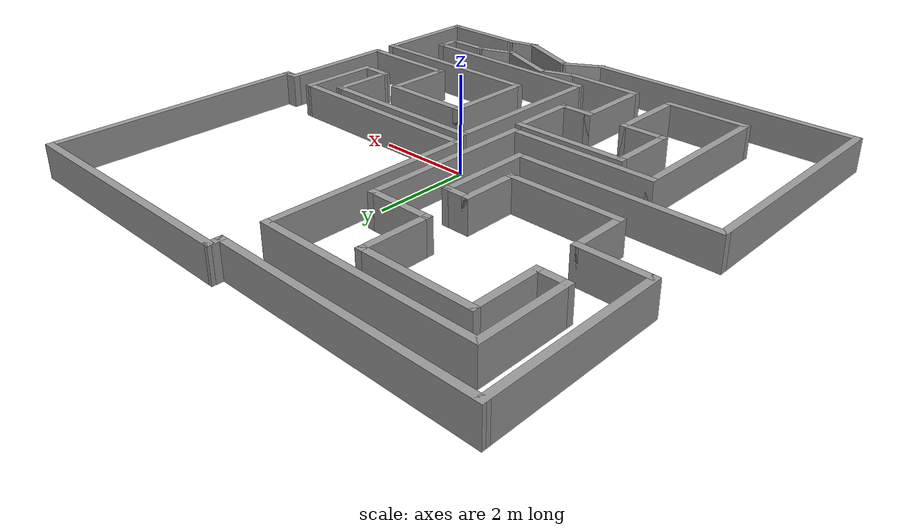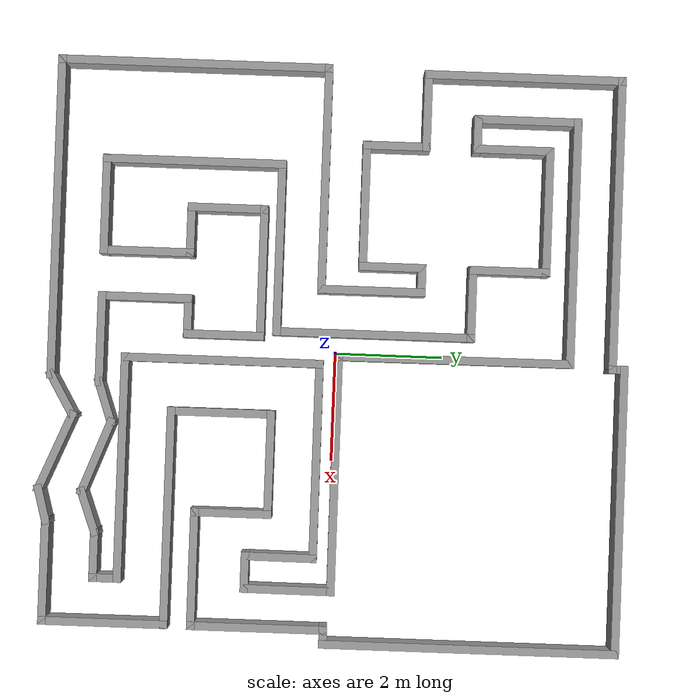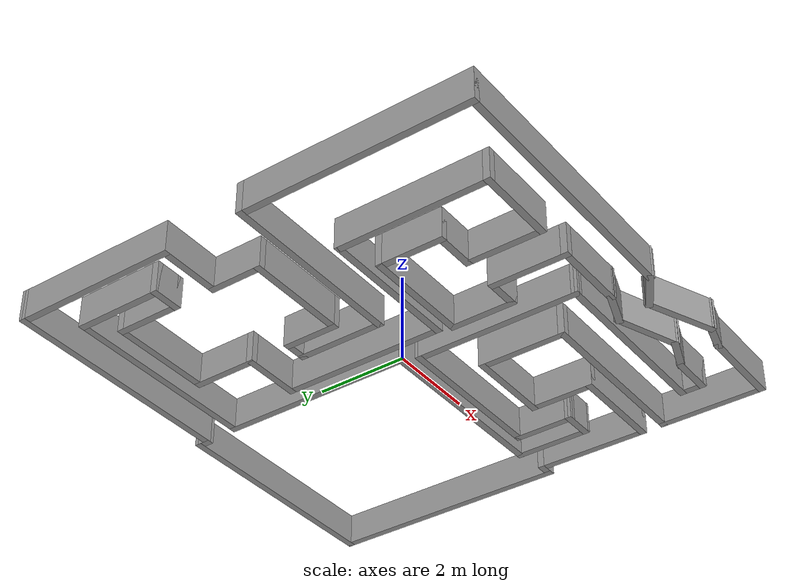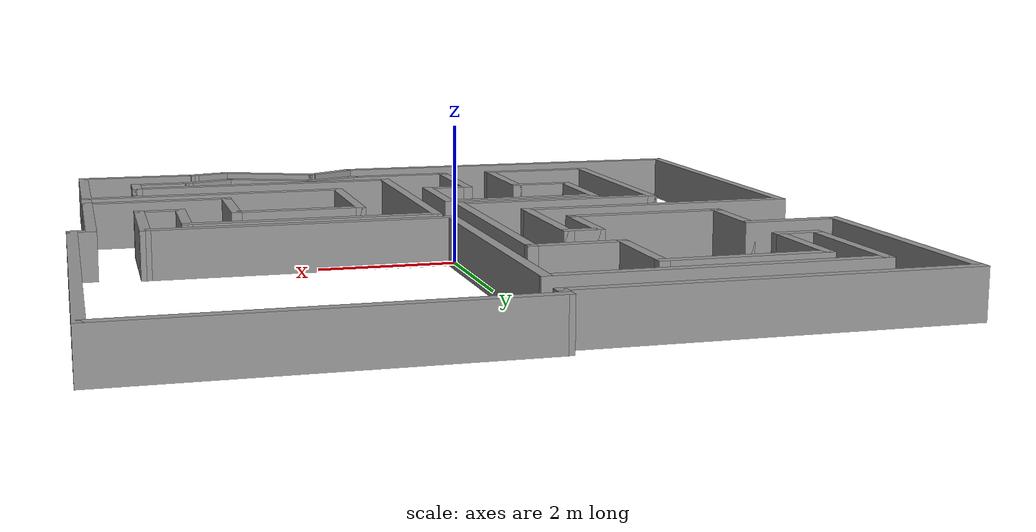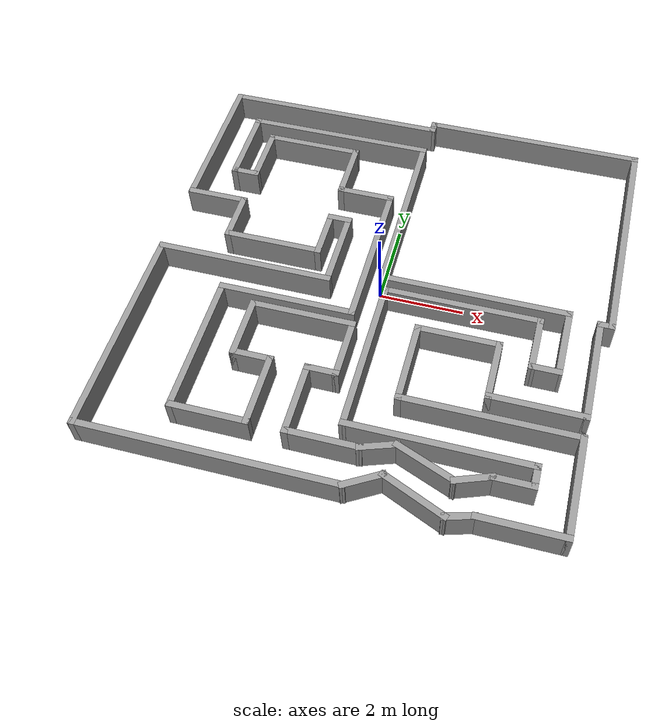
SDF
<?xml version='1.0'?>
<sdf version='1.7'>
  <model name='simulation_map'>
    <pose>0.044507 -0.033482 0 0 -0 0</pose>
    <link name='Wall_0'>
      <collision name='Wall_0_Collision'>
        <geometry>
          <box>
            <size>0.365427 0.15 0.7</size>
          </box>
        </geometry>
        <pose>0 0 0.35 0 -0 0</pose>
      </collision>
      <visual name='Wall_0_Visual'>
        <pose>0 0 0.35 0 -0 0</pose>
        <geometry>
          <box>
            <size>0.365427 0.15 0.7</size>
          </box>
        </geometry>
        <material>
          <script>
            <uri>file://media/materials/scripts/gazebo.material</uri>
            <name>Gazebo/Grey</name>
          </script>
          <ambient>1 1 1 1</ambient>
        </material>
        <meta>
          <layer>0</layer>
        </meta>
      </visual>
      <pose>0.070286 5.28177 0 0 -0 -1.57272</pose>
    </link>
    <link name='Wall_10'>
      <collision name='Wall_10_Collision'>
        <geometry>
          <box>
            <size>3.73867 0.15 0.7</size>
          </box>
        </geometry>
        <pose>0 0 0.35 0 -0 0</pose>
      </collision>
      <visual name='Wall_10_Visual'>
        <pose>0 0 0.35 0 -0 0</pose>
        <geometry>
          <box>
            <size>3.73867 0.15 0.7</size>
          </box>
        </geometry>
        <material>
          <script>
            <uri>file://media/materials/scripts/gazebo.material</uri>
            <name>Gazebo/Grey</name>
          </script>
          <ambient>1 1 1 1</ambient>
        </material>
        <meta>
          <layer>0</layer>
        </meta>
      </visual>
      <pose>-5.27951 3.38198 0 0 -0 -1.5708</pose>
    </link>
    <link name='Wall_13'>
      <collision name='Wall_13_Collision'>
        <geometry>
          <box>
            <size>1.5 0.15 0.7</size>
          </box>
        </geometry>
        <pose>0 0 0.35 0 -0 0</pose>
      </collision>
      <visual name='Wall_13_Visual'>
        <pose>0 0 0.35 0 -0 0</pose>
        <geometry>
          <box>
            <size>1.5 0.15 0.7</size>
          </box>
        </geometry>
        <material>
          <script>
            <uri>file://media/materials/scripts/gazebo.material</uri>
            <name>Gazebo/Grey</name>
          </script>
          <ambient>1 1 1 1</ambient>
        </material>
        <meta>
          <layer>0</layer>
        </meta>
      </visual>
      <pose>-4.60451 1.58748 0 0 -0 0</pose>
    </link>
    <link name='Wall_14'>
      <collision name='Wall_14_Collision'>
        <geometry>
          <box>
            <size>1.25 0.15 0.7</size>
          </box>
        </geometry>
        <pose>0 0 0.35 0 -0 0</pose>
      </collision>
      <visual name='Wall_14_Visual'>
        <pose>0 0 0.35 0 -0 0</pose>
        <geometry>
          <box>
            <size>1.25 0.15 0.7</size>
          </box>
        </geometry>
        <material>
          <script>
            <uri>file://media/materials/scripts/gazebo.material</uri>
            <name>Gazebo/Grey</name>
          </script>
          <ambient>1 1 1 1</ambient>
        </material>
        <meta>
          <layer>0</layer>
        </meta>
      </visual>
      <pose>-3.92951 1.03748 0 0 -0 -1.5708</pose>
    </link>
    <link name='Wall_15'>
      <collision name='Wall_15_Collision'>
        <geometry>
          <box>
            <size>2.4 0.15 0.7</size>
          </box>
        </geometry>
        <pose>0 0 0.35 0 -0 0</pose>
      </collision>
      <visual name='Wall_15_Visual'>
        <pose>0 0 0.35 0 -0 0</pose>
        <geometry>
          <box>
            <size>2.4 0.15 0.7</size>
          </box>
        </geometry>
        <material>
          <script>
            <uri>file://media/materials/scripts/gazebo.material</uri>
            <name>Gazebo/Grey</name>
          </script>
          <ambient>1 1 1 1</ambient>
        </material>
        <meta>
          <layer>0</layer>
        </meta>
      </visual>
      <pose>-2.80451 0.487482 0 0 -0 0</pose>
    </link>
    <link name='Wall_17'>
      <collision name='Wall_17_Collision'>
        <geometry>
          <box>
            <size>1.25 0.15 0.7</size>
          </box>
        </geometry>
        <pose>0 0 0.35 0 -0 0</pose>
      </collision>
      <visual name='Wall_17_Visual'>
        <pose>0 0 0.35 0 -0 0</pose>
        <geometry>
          <box>
            <size>1.25 0.15 0.7</size>
          </box>
        </geometry>
        <material>
          <script>
            <uri>file://media/materials/scripts/gazebo.material</uri>
            <name>Gazebo/Grey</name>
          </script>
          <ambient>1 1 1 1</ambient>
        </material>
        <meta>
          <layer>0</layer>
        </meta>
      </visual>
      <pose>-1.67951 1.03748 0 0 -0 1.5708</pose>
    </link>
    <link name='Wall_18'>
      <collision name='Wall_18_Collision'>
        <geometry>
          <box>
            <size>0.6 0.15 0.7</size>
          </box>
        </geometry>
        <pose>0 0 0.35 0 -0 0</pose>
      </collision>
      <visual name='Wall_18_Visual'>
        <pose>0 0 0.35 0 -0 0</pose>
        <geometry>
          <box>
            <size>0.6 0.15 0.7</size>
          </box>
        </geometry>
        <material>
          <script>
            <uri>file://media/materials/scripts/gazebo.material</uri>
            <name>Gazebo/Grey</name>
          </script>
          <ambient>1 1 1 1</ambient>
        </material>
        <meta>
          <layer>0</layer>
        </meta>
      </visual>
      <pose>-1.45451 1.58748 0 0 -0 0</pose>
    </link>
    <link name='Wall_20'>
      <collision name='Wall_20_Collision'>
        <geometry>
          <box>
            <size>2 0.15 0.7</size>
          </box>
        </geometry>
        <pose>0 0 0.35 0 -0 0</pose>
      </collision>
      <visual name='Wall_20_Visual'>
        <pose>0 0 0.35 0 -0 0</pose>
        <geometry>
          <box>
            <size>2 0.15 0.7</size>
          </box>
        </geometry>
        <material>
          <script>
            <uri>file://media/materials/scripts/gazebo.material</uri>
            <name>Gazebo/Grey</name>
          </script>
          <ambient>1 1 1 1</ambient>
        </material>
        <meta>
          <layer>0</layer>
        </meta>
      </visual>
      <pose>-1.22951 0.662482 0 0 -0 -1.5708</pose>
    </link>
    <link name='Wall_21'>
      <collision name='Wall_21_Collision'>
        <geometry>
          <box>
            <size>4.25 0.15 0.7</size>
          </box>
        </geometry>
        <pose>0 0 0.35 0 -0 0</pose>
      </collision>
      <visual name='Wall_21_Visual'>
        <pose>0 0 0.35 0 -0 0</pose>
        <geometry>
          <box>
            <size>4.25 0.15 0.7</size>
          </box>
        </geometry>
        <material>
          <script>
            <uri>file://media/materials/scripts/gazebo.material</uri>
            <name>Gazebo/Grey</name>
          </script>
          <ambient>1 1 1 1</ambient>
        </material>
        <meta>
          <layer>0</layer>
        </meta>
      </visual>
      <pose>-3.27951 -0.262518 0 0 -0 3.14159</pose>
    </link>
    <link name='Wall_22'>
      <collision name='Wall_22_Collision'>
        <geometry>
          <box>
            <size>5.1 0.15 0.7</size>
          </box>
        </geometry>
        <pose>0 0 0.35 0 -0 0</pose>
      </collision>
      <visual name='Wall_22_Visual'>
        <pose>0 0 0.35 0 -0 0</pose>
        <geometry>
          <box>
            <size>5.1 0.15 0.7</size>
          </box>
        </geometry>
        <material>
          <script>
            <uri>file://media/materials/scripts/gazebo.material</uri>
            <name>Gazebo/Grey</name>
          </script>
          <ambient>1 1 1 1</ambient>
        </material>
        <meta>
          <layer>0</layer>
        </meta>
      </visual>
      <pose>-5.32951 -2.73752 0 0 -0 -1.5708</pose>
    </link>
    <link name='Wall_25'>
      <collision name='Wall_25_Collision'>
        <geometry>
          <box>
            <size>6 0.15 0.7</size>
          </box>
        </geometry>
        <pose>0 0 0.35 0 -0 0</pose>
      </collision>
      <visual name='Wall_25_Visual'>
        <pose>0 0 0.35 0 -0 0</pose>
        <geometry>
          <box>
            <size>6 0.15 0.7</size>
          </box>
        </geometry>
        <material>
          <script>
            <uri>file://media/materials/scripts/gazebo.material</uri>
            <name>Gazebo/Grey</name>
          </script>
          <ambient>1 1 1 1</ambient>
        </material>
        <meta>
          <layer>0</layer>
        </meta>
      </visual>
      <pose>-2.40451 -5.21252 0 0 -0 0</pose>
    </link>
    <link name='Wall_26'>
      <collision name='Wall_26_Collision'>
        <geometry>
          <box>
            <size>1 0.15 0.7</size>
          </box>
        </geometry>
        <pose>0 0 0.35 0 -0 0</pose>
      </collision>
      <visual name='Wall_26_Visual'>
        <pose>0 0 0.35 0 -0 0</pose>
        <geometry>
          <box>
            <size>1 0.15 0.7</size>
          </box>
        </geometry>
        <material>
          <script>
            <uri>file://media/materials/scripts/gazebo.material</uri>
            <name>Gazebo/Grey</name>
          </script>
          <ambient>1 1 1 1</ambient>
        </material>
        <meta>
          <layer>0</layer>
        </meta>
      </visual>
      <pose>0.888493 -5.00002 0 0 -0 0.52367</pose>
    </link>
    <link name='Wall_27'>
      <collision name='Wall_27_Collision'>
        <geometry>
          <box>
            <size>1.65208 0.15 0.7</size>
          </box>
        </geometry>
        <pose>0 0 0.35 0 -0 0</pose>
      </collision>
      <visual name='Wall_27_Visual'>
        <pose>0 0 0.35 0 -0 0</pose>
        <geometry>
          <box>
            <size>1.65208 0.15 0.7</size>
          </box>
        </geometry>
        <material>
          <script>
            <uri>file://media/materials/scripts/gazebo.material</uri>
            <name>Gazebo/Grey</name>
          </script>
          <ambient>1 1 1 1</ambient>
        </material>
        <meta>
          <layer>0</layer>
        </meta>
      </visual>
      <pose>1.94949 -5.07702 0 0 -0 -0.395713</pose>
    </link>
    <link name='Wall_3'>
      <collision name='Wall_3_Collision'>
        <geometry>
          <box>
            <size>5.409 0.15 0.7</size>
          </box>
        </geometry>
        <pose>0 0 0.35 0 -0 0</pose>
      </collision>
      <visual name='Wall_3_Visual'>
        <pose>0 0 0.35 0 -0 0</pose>
        <geometry>
          <box>
            <size>5.409 0.15 0.7</size>
          </box>
        </geometry>
        <material>
          <script>
            <uri>file://media/materials/scripts/gazebo.material</uri>
            <name>Gazebo/Grey</name>
          </script>
          <ambient>1 1 1 1</ambient>
        </material>
        <meta>
          <layer>0</layer>
        </meta>
      </visual>
      <pose>2.69999 5.38948 0 0 -0 0</pose>
    </link>
    <link name='Wall_30'>
      <collision name='Wall_30_Collision'>
        <geometry>
          <box>
            <size>0.75 0.15 0.7</size>
          </box>
        </geometry>
        <pose>0 0 0.35 0 -0 0</pose>
      </collision>
      <visual name='Wall_30_Visual'>
        <pose>0 0 0.35 0 -0 0</pose>
        <geometry>
          <box>
            <size>0.75 0.15 0.7</size>
          </box>
        </geometry>
        <material>
          <script>
            <uri>file://media/materials/scripts/gazebo.material</uri>
            <name>Gazebo/Grey</name>
          </script>
          <ambient>1 1 1 1</ambient>
        </material>
        <meta>
          <layer>0</layer>
        </meta>
      </visual>
      <pose>2.93249 -5.28902 0 0 -0 0.261139</pose>
    </link>
    <link name='Wall_31'>
      <collision name='Wall_31_Collision'>
        <geometry>
          <box>
            <size>2 0.15 0.7</size>
          </box>
        </geometry>
        <pose>0 0 0.35 0 -0 0</pose>
      </collision>
      <visual name='Wall_31_Visual'>
        <pose>0 0 0.35 0 -0 0</pose>
        <geometry>
          <box>
            <size>2 0.15 0.7</size>
          </box>
        </geometry>
        <material>
          <script>
            <uri>file://media/materials/scripts/gazebo.material</uri>
            <name>Gazebo/Grey</name>
          </script>
          <ambient>1 1 1 1</ambient>
        </material>
        <meta>
          <layer>0</layer>
        </meta>
      </visual>
      <pose>4.14749 -5.21152 0 0 -0 0</pose>
    </link>
    <link name='Wall_32'>
      <collision name='Wall_32_Collision'>
        <geometry>
          <box>
            <size>2.4 0.15 0.7</size>
          </box>
        </geometry>
        <pose>0 0 0.35 0 -0 0</pose>
      </collision>
      <visual name='Wall_32_Visual'>
        <pose>0 0 0.35 0 -0 0</pose>
        <geometry>
          <box>
            <size>2.4 0.15 0.7</size>
          </box>
        </geometry>
        <material>
          <script>
            <uri>file://media/materials/scripts/gazebo.material</uri>
            <name>Gazebo/Grey</name>
          </script>
          <ambient>1 1 1 1</ambient>
        </material>
        <meta>
          <layer>0</layer>
        </meta>
      </visual>
      <pose>5.07249 -4.08652 0 0 -0 1.5708</pose>
    </link>
    <link name='Wall_34'>
      <collision name='Wall_34_Collision'>
        <geometry>
          <box>
            <size>4.1 0.15 0.7</size>
          </box>
        </geometry>
        <pose>0 0 0.35 0 -0 0</pose>
      </collision>
      <visual name='Wall_34_Visual'>
        <pose>0 0 0.35 0 -0 0</pose>
        <geometry>
          <box>
            <size>4.1 0.15 0.7</size>
          </box>
        </geometry>
        <material>
          <script>
            <uri>file://media/materials/scripts/gazebo.material</uri>
            <name>Gazebo/Grey</name>
          </script>
          <ambient>1 1 1 1</ambient>
        </material>
        <meta>
          <layer>0</layer>
        </meta>
      </visual>
      <pose>3.09749 -2.96152 0 0 -0 3.14159</pose>
    </link>
    <link name='Wall_36'>
      <collision name='Wall_36_Collision'>
        <geometry>
          <box>
            <size>2 0.15 0.7</size>
          </box>
        </geometry>
        <pose>0 0 0.35 0 -0 0</pose>
      </collision>
      <visual name='Wall_36_Visual'>
        <pose>0 0 0.35 0 -0 0</pose>
        <geometry>
          <box>
            <size>2 0.15 0.7</size>
          </box>
        </geometry>
        <material>
          <script>
            <uri>file://media/materials/scripts/gazebo.material</uri>
            <name>Gazebo/Grey</name>
          </script>
          <ambient>1 1 1 1</ambient>
        </material>
        <meta>
          <layer>0</layer>
        </meta>
      </visual>
      <pose>1.12249 -2.03652 0 0 -0 1.5708</pose>
    </link>
    <link name='Wall_37'>
      <collision name='Wall_37_Collision'>
        <geometry>
          <box>
            <size>2 0.15 0.7</size>
          </box>
        </geometry>
        <pose>0 0 0.35 0 -0 0</pose>
      </collision>
      <visual name='Wall_37_Visual'>
        <pose>0 0 0.35 0 -0 0</pose>
        <geometry>
          <box>
            <size>2 0.15 0.7</size>
          </box>
        </geometry>
        <material>
          <script>
            <uri>file://media/materials/scripts/gazebo.material</uri>
            <name>Gazebo/Grey</name>
          </script>
          <ambient>1 1 1 1</ambient>
        </material>
        <meta>
          <layer>0</layer>
        </meta>
      </visual>
      <pose>2.04749 -1.11152 0 0 -0 0</pose>
    </link>
    <link name='Wall_38'>
      <collision name='Wall_38_Collision'>
        <geometry>
          <box>
            <size>1.5 0.15 0.7</size>
          </box>
        </geometry>
        <pose>0 0 0.35 0 -0 0</pose>
      </collision>
      <visual name='Wall_38_Visual'>
        <pose>0 0 0.35 0 -0 0</pose>
        <geometry>
          <box>
            <size>1.5 0.15 0.7</size>
          </box>
        </geometry>
        <material>
          <script>
            <uri>file://media/materials/scripts/gazebo.material</uri>
            <name>Gazebo/Grey</name>
          </script>
          <ambient>1 1 1 1</ambient>
        </material>
        <meta>
          <layer>0</layer>
        </meta>
      </visual>
      <pose>2.97249 -1.78652 0 0 -0 -1.5708</pose>
    </link>
    <link name='Wall_39'>
      <collision name='Wall_39_Collision'>
        <geometry>
          <box>
            <size>2.25 0.15 0.7</size>
          </box>
        </geometry>
        <pose>0 0 0.35 0 -0 0</pose>
      </collision>
      <visual name='Wall_39_Visual'>
        <pose>0 0 0.35 0 -0 0</pose>
        <geometry>
          <box>
            <size>2.25 0.15 0.7</size>
          </box>
        </geometry>
        <material>
          <script>
            <uri>file://media/materials/scripts/gazebo.material</uri>
            <name>Gazebo/Grey</name>
          </script>
          <ambient>1 1 1 1</ambient>
        </material>
        <meta>
          <layer>0</layer>
        </meta>
      </visual>
      <pose>4.02249 -2.46152 0 0 -0 0</pose>
    </link>
    <link name='Wall_40'>
      <collision name='Wall_40_Collision'>
        <geometry>
          <box>
            <size>2.6 0.15 0.7</size>
          </box>
        </geometry>
        <pose>0 0 0.35 0 -0 0</pose>
      </collision>
      <visual name='Wall_40_Visual'>
        <pose>0 0 0.35 0 -0 0</pose>
        <geometry>
          <box>
            <size>2.6 0.15 0.7</size>
          </box>
        </geometry>
        <material>
          <script>
            <uri>file://media/materials/scripts/gazebo.material</uri>
            <name>Gazebo/Grey</name>
          </script>
          <ambient>1 1 1 1</ambient>
        </material>
        <meta>
          <layer>0</layer>
        </meta>
      </visual>
      <pose>5.07249 -1.23652 0 0 -0 1.5708</pose>
    </link>
    <link name='Wall_42'>
      <collision name='Wall_42_Collision'>
        <geometry>
          <box>
            <size>0.406445 0.15 0.7</size>
          </box>
        </geometry>
        <pose>0 0 0.35 0 -0 0</pose>
      </collision>
      <visual name='Wall_42_Visual'>
        <pose>0 0 0.35 0 -0 0</pose>
        <geometry>
          <box>
            <size>0.406445 0.15 0.7</size>
          </box>
        </geometry>
        <material>
          <script>
            <uri>file://media/materials/scripts/gazebo.material</uri>
            <name>Gazebo/Grey</name>
          </script>
          <ambient>1 1 1 1</ambient>
        </material>
        <meta>
          <layer>0</layer>
        </meta>
      </visual>
      <pose>5.20049 -0.011518 0 0 -0 0</pose>
    </link>
    <link name='Wall_45'>
      <collision name='Wall_45_Collision'>
        <geometry>
          <box>
            <size>5.55057 0.15 0.7</size>
          </box>
        </geometry>
        <pose>0 0 0.35 0 -0 0</pose>
      </collision>
      <visual name='Wall_45_Visual'>
        <pose>0 0 0.35 0 -0 0</pose>
        <geometry>
          <box>
            <size>5.55057 0.15 0.7</size>
          </box>
        </geometry>
        <material>
          <script>
            <uri>file://media/materials/scripts/gazebo.material</uri>
            <name>Gazebo/Grey</name>
          </script>
          <ambient>1 1 1 1</ambient>
        </material>
        <meta>
          <layer>0</layer>
        </meta>
      </visual>
      <pose>5.32899 2.68898 0 0 -0 -1.57098</pose>
    </link>
    <link name='Wall_47'>
      <collision name='Wall_47_Collision'>
        <geometry>
          <box>
            <size>4.5 0.15 0.7</size>
          </box>
        </geometry>
        <pose>0 0 0.35 0 -0 0</pose>
      </collision>
      <visual name='Wall_47_Visual'>
        <pose>0 0 0.35 0 -0 0</pose>
        <geometry>
          <box>
            <size>4.5 0.15 0.7</size>
          </box>
        </geometry>
        <material>
          <script>
            <uri>file://media/materials/scripts/gazebo.material</uri>
            <name>Gazebo/Grey</name>
          </script>
          <ambient>1 1 1 1</ambient>
        </material>
        <meta>
          <layer>0</layer>
        </meta>
      </visual>
      <pose>2.18349 0.101482 0 0 -0 0</pose>
    </link>
    <link name='Wall_48'>
      <collision name='Wall_48_Collision'>
        <geometry>
          <box>
            <size>1.75 0.15 0.7</size>
          </box>
        </geometry>
        <pose>0 0 0.35 0 -0 0</pose>
      </collision>
      <visual name='Wall_48_Visual'>
        <pose>0 0 0.35 0 -0 0</pose>
        <geometry>
          <box>
            <size>1.75 0.15 0.7</size>
          </box>
        </geometry>
        <material>
          <script>
            <uri>file://media/materials/scripts/gazebo.material</uri>
            <name>Gazebo/Grey</name>
          </script>
          <ambient>1 1 1 1</ambient>
        </material>
        <meta>
          <layer>0</layer>
        </meta>
      </visual>
      <pose>4.35499 -0.698518 0 0 -0 -1.57517</pose>
    </link>
    <link name='Wall_49'>
      <collision name='Wall_49_Collision'>
        <geometry>
          <box>
            <size>0.75 0.15 0.7</size>
          </box>
        </geometry>
        <pose>0 0 0.35 0 -0 0</pose>
      </collision>
      <visual name='Wall_49_Visual'>
        <pose>0 0 0.35 0 -0 0</pose>
        <geometry>
          <box>
            <size>0.75 0.15 0.7</size>
          </box>
        </geometry>
        <material>
          <script>
            <uri>file://media/materials/scripts/gazebo.material</uri>
            <name>Gazebo/Grey</name>
          </script>
          <ambient>1 1 1 1</ambient>
        </material>
        <meta>
          <layer>0</layer>
        </meta>
      </visual>
      <pose>4.05149 -1.49852 0 0 -0 3.14159</pose>
    </link>
    <link name='Wall_50'>
      <collision name='Wall_50_Collision'>
        <geometry>
          <box>
            <size>1.4 0.15 0.7</size>
          </box>
        </geometry>
        <pose>0 0 0.35 0 -0 0</pose>
      </collision>
      <visual name='Wall_50_Visual'>
        <pose>0 0 0.35 0 -0 0</pose>
        <geometry>
          <box>
            <size>1.4 0.15 0.7</size>
          </box>
        </geometry>
        <material>
          <script>
            <uri>file://media/materials/scripts/gazebo.material</uri>
            <name>Gazebo/Grey</name>
          </script>
          <ambient>1 1 1 1</ambient>
        </material>
        <meta>
          <layer>0</layer>
        </meta>
      </visual>
      <pose>3.75499 -0.873518 0 0 -0 1.5652</pose>
    </link>
    <link name='Wall_52'>
      <collision name='Wall_52_Collision'>
        <geometry>
          <box>
            <size>3.75 0.15 0.7</size>
          </box>
        </geometry>
        <pose>0 0 0.35 0 -0 0</pose>
      </collision>
      <visual name='Wall_52_Visual'>
        <pose>0 0 0.35 0 -0 0</pose>
        <geometry>
          <box>
            <size>3.75 0.15 0.7</size>
          </box>
        </geometry>
        <material>
          <script>
            <uri>file://media/materials/scripts/gazebo.material</uri>
            <name>Gazebo/Grey</name>
          </script>
          <ambient>1 1 1 1</ambient>
        </material>
        <meta>
          <layer>0</layer>
        </meta>
      </visual>
      <pose>1.95849 -0.248518 0 0 -0 3.14159</pose>
    </link>
    <link name='Wall_53'>
      <collision name='Wall_53_Collision'>
        <geometry>
          <box>
            <size>3.75 0.15 0.7</size>
          </box>
        </geometry>
        <pose>0 0 0.35 0 -0 0</pose>
      </collision>
      <visual name='Wall_53_Visual'>
        <pose>0 0 0.35 0 -0 0</pose>
        <geometry>
          <box>
            <size>3.75 0.15 0.7</size>
          </box>
        </geometry>
        <material>
          <script>
            <uri>file://media/materials/scripts/gazebo.material</uri>
            <name>Gazebo/Grey</name>
          </script>
          <ambient>1 1 1 1</ambient>
        </material>
        <meta>
          <layer>0</layer>
        </meta>
      </visual>
      <pose>0.154993 -2.04852 0 0 -0 -1.57274</pose>
    </link>
    <link name='Wall_54'>
      <collision name='Wall_54_Collision'>
        <geometry>
          <box>
            <size>4.25 0.15 0.7</size>
          </box>
        </geometry>
        <pose>0 0 0.35 0 -0 0</pose>
      </collision>
      <visual name='Wall_54_Visual'>
        <pose>0 0 0.35 0 -0 0</pose>
        <geometry>
          <box>
            <size>4.25 0.15 0.7</size>
          </box>
        </geometry>
        <material>
          <script>
            <uri>file://media/materials/scripts/gazebo.material</uri>
            <name>Gazebo/Grey</name>
          </script>
          <ambient>1 1 1 1</ambient>
        </material>
        <meta>
          <layer>0</layer>
        </meta>
      </visual>
      <pose>2.20149 -3.84852 0 0 -0 0</pose>
    </link>
    <link name='Wall_55'>
      <collision name='Wall_55_Collision'>
        <geometry>
          <box>
            <size>0.6 0.15 0.7</size>
          </box>
        </geometry>
        <pose>0 0 0.35 0 -0 0</pose>
      </collision>
      <visual name='Wall_55_Visual'>
        <pose>0 0 0.35 0 -0 0</pose>
        <geometry>
          <box>
            <size>0.6 0.15 0.7</size>
          </box>
        </geometry>
        <material>
          <script>
            <uri>file://media/materials/scripts/gazebo.material</uri>
            <name>Gazebo/Grey</name>
          </script>
          <ambient>1 1 1 1</ambient>
        </material>
        <meta>
          <layer>0</layer>
        </meta>
      </visual>
      <pose>4.25149 -4.07352 0 0 -0 -1.5708</pose>
    </link>
    <link name='Wall_57'>
      <collision name='Wall_57_Collision'>
        <geometry>
          <box>
            <size>1 0.15 0.7</size>
          </box>
        </geometry>
        <pose>0 0 0.35 0 -0 0</pose>
      </collision>
      <visual name='Wall_57_Visual'>
        <pose>0 0 0.35 0 -0 0</pose>
        <geometry>
          <box>
            <size>1 0.15 0.7</size>
          </box>
        </geometry>
        <material>
          <script>
            <uri>file://media/materials/scripts/gazebo.material</uri>
            <name>Gazebo/Grey</name>
          </script>
          <ambient>1 1 1 1</ambient>
        </material>
        <meta>
          <layer>0</layer>
        </meta>
      </visual>
      <pose>3.82649 -4.29852 0 0 -0 3.14159</pose>
    </link>
    <link name='Wall_60'>
      <collision name='Wall_60_Collision'>
        <geometry>
          <box>
            <size>0.933275 0.15 0.7</size>
          </box>
        </geometry>
        <pose>0 0 0.35 0 -0 0</pose>
      </collision>
      <visual name='Wall_60_Visual'>
        <pose>0 0 0.35 0 -0 0</pose>
        <geometry>
          <box>
            <size>0.933275 0.15 0.7</size>
          </box>
        </geometry>
        <material>
          <script>
            <uri>file://media/materials/scripts/gazebo.material</uri>
            <name>Gazebo/Grey</name>
          </script>
          <ambient>1 1 1 1</ambient>
        </material>
        <meta>
          <layer>0</layer>
        </meta>
      </visual>
      <pose>3.03349 -4.43252 0 0 -0 -2.79238</pose>
    </link>
    <link name='Wall_62'>
      <collision name='Wall_62_Collision'>
        <geometry>
          <box>
            <size>1.54004 0.15 0.7</size>
          </box>
        </geometry>
        <pose>0 0 0.35 0 -0 0</pose>
      </collision>
      <visual name='Wall_62_Visual'>
        <pose>0 0 0.35 0 -0 0</pose>
        <geometry>
          <box>
            <size>1.54004 0.15 0.7</size>
          </box>
        </geometry>
        <material>
          <script>
            <uri>file://media/materials/scripts/gazebo.material</uri>
            <name>Gazebo/Grey</name>
          </script>
          <ambient>1 1 1 1</ambient>
        </material>
        <meta>
          <layer>0</layer>
        </meta>
      </visual>
      <pose>2.01699 -4.31652 0 0 -0 2.77364</pose>
    </link>
    <link name='Wall_66'>
      <collision name='Wall_66_Collision'>
        <geometry>
          <box>
            <size>0.9273 0.15 0.7</size>
          </box>
        </geometry>
        <pose>0 0 0.35 0 -0 0</pose>
      </collision>
      <visual name='Wall_66_Visual'>
        <pose>0 0 0.35 0 -0 0</pose>
        <geometry>
          <box>
            <size>0.9273 0.15 0.7</size>
          </box>
        </geometry>
        <material>
          <script>
            <uri>file://media/materials/scripts/gazebo.material</uri>
            <name>Gazebo/Grey</name>
          </script>
          <ambient>1 1 1 1</ambient>
        </material>
        <meta>
          <layer>0</layer>
        </meta>
      </visual>
      <pose>1.00049 -4.19152 0 0 -0 -2.81415</pose>
    </link>
    <link name='Wall_68'>
      <collision name='Wall_68_Collision'>
        <geometry>
          <box>
            <size>1.75 0.15 0.7</size>
          </box>
        </geometry>
        <pose>0 0 0.35 0 -0 0</pose>
      </collision>
      <visual name='Wall_68_Visual'>
        <pose>0 0 0.35 0 -0 0</pose>
        <geometry>
          <box>
            <size>1.75 0.15 0.7</size>
          </box>
        </geometry>
        <material>
          <script>
            <uri>file://media/materials/scripts/gazebo.material</uri>
            <name>Gazebo/Grey</name>
          </script>
          <ambient>1 1 1 1</ambient>
        </material>
        <meta>
          <layer>0</layer>
        </meta>
      </visual>
      <pose>-0.167507 -4.31652 0 0 -0 3.14159</pose>
    </link>
    <link name='Wall_69'>
      <collision name='Wall_69_Collision'>
        <geometry>
          <box>
            <size>1.75 0.15 0.7</size>
          </box>
        </geometry>
        <pose>0 0 0.35 0 -0 0</pose>
      </collision>
      <visual name='Wall_69_Visual'>
        <pose>0 0 0.35 0 -0 0</pose>
        <geometry>
          <box>
            <size>1.75 0.15 0.7</size>
          </box>
        </geometry>
        <material>
          <script>
            <uri>file://media/materials/scripts/gazebo.material</uri>
            <name>Gazebo/Grey</name>
          </script>
          <ambient>1 1 1 1</ambient>
        </material>
        <meta>
          <layer>0</layer>
        </meta>
      </visual>
      <pose>-0.967507 -3.51652 0 0 -0 1.5708</pose>
    </link>
    <link name='Wall_70'>
      <collision name='Wall_70_Collision'>
        <geometry>
          <box>
            <size>0.8 0.15 0.7</size>
          </box>
        </geometry>
        <pose>0 0 0.35 0 -0 0</pose>
      </collision>
      <visual name='Wall_70_Visual'>
        <pose>0 0 0.35 0 -0 0</pose>
        <geometry>
          <box>
            <size>0.8 0.15 0.7</size>
          </box>
        </geometry>
        <material>
          <script>
            <uri>file://media/materials/scripts/gazebo.material</uri>
            <name>Gazebo/Grey</name>
          </script>
          <ambient>1 1 1 1</ambient>
        </material>
        <meta>
          <layer>0</layer>
        </meta>
      </visual>
      <pose>-0.642507 -2.71652 0 0 -0 0</pose>
    </link>
    <link name='Wall_72'>
      <collision name='Wall_72_Collision'>
        <geometry>
          <box>
            <size>1.5 0.15 0.7</size>
          </box>
        </geometry>
        <pose>0 0 0.35 0 -0 0</pose>
      </collision>
      <visual name='Wall_72_Visual'>
        <pose>0 0 0.35 0 -0 0</pose>
        <geometry>
          <box>
            <size>1.5 0.15 0.7</size>
          </box>
        </geometry>
        <material>
          <script>
            <uri>file://media/materials/scripts/gazebo.material</uri>
            <name>Gazebo/Grey</name>
          </script>
          <ambient>1 1 1 1</ambient>
        </material>
        <meta>
          <layer>0</layer>
        </meta>
      </visual>
      <pose>-0.317507 -2.04152 0 0 -0 1.5708</pose>
    </link>
    <link name='Wall_73'>
      <collision name='Wall_73_Collision'>
        <geometry>
          <box>
            <size>2.5 0.15 0.7</size>
          </box>
        </geometry>
        <pose>0 0 0.35 0 -0 0</pose>
      </collision>
      <visual name='Wall_73_Visual'>
        <pose>0 0 0.35 0 -0 0</pose>
        <geometry>
          <box>
            <size>2.5 0.15 0.7</size>
          </box>
        </geometry>
        <material>
          <script>
            <uri>file://media/materials/scripts/gazebo.material</uri>
            <name>Gazebo/Grey</name>
          </script>
          <ambient>1 1 1 1</ambient>
        </material>
        <meta>
          <layer>0</layer>
        </meta>
      </visual>
      <pose>-1.49251 -1.36652 0 0 -0 3.14159</pose>
    </link>
    <link name='Wall_74'>
      <collision name='Wall_74_Collision'>
        <geometry>
          <box>
            <size>1.5 0.15 0.7</size>
          </box>
        </geometry>
        <pose>0 0 0.35 0 -0 0</pose>
      </collision>
      <visual name='Wall_74_Visual'>
        <pose>0 0 0.35 0 -0 0</pose>
        <geometry>
          <box>
            <size>1.5 0.15 0.7</size>
          </box>
        </geometry>
        <material>
          <script>
            <uri>file://media/materials/scripts/gazebo.material</uri>
            <name>Gazebo/Grey</name>
          </script>
          <ambient>1 1 1 1</ambient>
        </material>
        <meta>
          <layer>0</layer>
        </meta>
      </visual>
      <pose>-2.66751 -2.04152 0 0 -0 -1.5708</pose>
    </link>
    <link name='Wall_75'>
      <collision name='Wall_75_Collision'>
        <geometry>
          <box>
            <size>1 0.15 0.7</size>
          </box>
        </geometry>
        <pose>0 0 0.35 0 -0 0</pose>
      </collision>
      <visual name='Wall_75_Visual'>
        <pose>0 0 0.35 0 -0 0</pose>
        <geometry>
          <box>
            <size>1 0.15 0.7</size>
          </box>
        </geometry>
        <material>
          <script>
            <uri>file://media/materials/scripts/gazebo.material</uri>
            <name>Gazebo/Grey</name>
          </script>
          <ambient>1 1 1 1</ambient>
        </material>
        <meta>
          <layer>0</layer>
        </meta>
      </visual>
      <pose>-2.24251 -2.71652 0 0 -0 0</pose>
    </link>
    <link name='Wall_76'>
      <collision name='Wall_76_Collision'>
        <geometry>
          <box>
            <size>1.75 0.15 0.7</size>
          </box>
        </geometry>
        <pose>0 0 0.35 0 -0 0</pose>
      </collision>
      <visual name='Wall_76_Visual'>
        <pose>0 0 0.35 0 -0 0</pose>
        <geometry>
          <box>
            <size>1.75 0.15 0.7</size>
          </box>
        </geometry>
        <material>
          <script>
            <uri>file://media/materials/scripts/gazebo.material</uri>
            <name>Gazebo/Grey</name>
          </script>
          <ambient>1 1 1 1</ambient>
        </material>
        <meta>
          <layer>0</layer>
        </meta>
      </visual>
      <pose>-1.81751 -3.51652 0 0 -0 -1.5708</pose>
    </link>
    <link name='Wall_77'>
      <collision name='Wall_77_Collision'>
        <geometry>
          <box>
            <size>1.85 0.15 0.7</size>
          </box>
        </geometry>
        <pose>0 0 0.35 0 -0 0</pose>
      </collision>
      <visual name='Wall_77_Visual'>
        <pose>0 0 0.35 0 -0 0</pose>
        <geometry>
          <box>
            <size>1.85 0.15 0.7</size>
          </box>
        </geometry>
        <material>
          <script>
            <uri>file://media/materials/scripts/gazebo.material</uri>
            <name>Gazebo/Grey</name>
          </script>
          <ambient>1 1 1 1</ambient>
        </material>
        <meta>
          <layer>0</layer>
        </meta>
      </visual>
      <pose>-2.66751 -4.31652 0 0 -0 3.14159</pose>
    </link>
    <link name='Wall_79'>
      <collision name='Wall_79_Collision'>
        <geometry>
          <box>
            <size>3.4 0.15 0.7</size>
          </box>
        </geometry>
        <pose>0 0 0.35 0 -0 0</pose>
      </collision>
      <visual name='Wall_79_Visual'>
        <pose>0 0 0.35 0 -0 0</pose>
        <geometry>
          <box>
            <size>3.4 0.15 0.7</size>
          </box>
        </geometry>
        <material>
          <script>
            <uri>file://media/materials/scripts/gazebo.material</uri>
            <name>Gazebo/Grey</name>
          </script>
          <ambient>1 1 1 1</ambient>
        </material>
        <meta>
          <layer>0</layer>
        </meta>
      </visual>
      <pose>-3.51751 -2.69152 0 0 -0 1.5708</pose>
    </link>
    <link name='Wall_8'>
      <collision name='Wall_8_Collision'>
        <geometry>
          <box>
            <size>5.49587 0.15 0.7</size>
          </box>
        </geometry>
        <pose>0 0 0.35 0 -0 0</pose>
      </collision>
      <visual name='Wall_8_Visual'>
        <pose>0 0 0.35 0 -0 0</pose>
        <geometry>
          <box>
            <size>5.49587 0.15 0.7</size>
          </box>
        </geometry>
        <material>
          <script>
            <uri>file://media/materials/scripts/gazebo.material</uri>
            <name>Gazebo/Grey</name>
          </script>
          <ambient>1 1 1 1</ambient>
        </material>
        <meta>
          <layer>0</layer>
        </meta>
      </visual>
      <pose>-2.60657 5.17528 0 0 -0 -0.000452</pose>
    </link>
    <link name='Wall_81'>
      <collision name='Wall_81_Collision'>
        <geometry>
          <box>
            <size>3.25 0.15 0.7</size>
          </box>
        </geometry>
        <pose>0 0 0.35 0 -0 0</pose>
      </collision>
      <visual name='Wall_81_Visual'>
        <pose>0 0 0.35 0 -0 0</pose>
        <geometry>
          <box>
            <size>3.25 0.15 0.7</size>
          </box>
        </geometry>
        <material>
          <script>
            <uri>file://media/materials/scripts/gazebo.material</uri>
            <name>Gazebo/Grey</name>
          </script>
          <ambient>1 1 1 1</ambient>
        </material>
        <meta>
          <layer>0</layer>
        </meta>
      </visual>
      <pose>-1.96751 -1.06652 0 0 -0 0</pose>
    </link>
    <link name='Wall_82'>
      <collision name='Wall_82_Collision'>
        <geometry>
          <box>
            <size>3.75 0.15 0.7</size>
          </box>
        </geometry>
        <pose>0 0 0.35 0 -0 0</pose>
      </collision>
      <visual name='Wall_82_Visual'>
        <pose>0 0 0.35 0 -0 0</pose>
        <geometry>
          <box>
            <size>3.75 0.15 0.7</size>
          </box>
        </geometry>
        <material>
          <script>
            <uri>file://media/materials/scripts/gazebo.material</uri>
            <name>Gazebo/Grey</name>
          </script>
          <ambient>1 1 1 1</ambient>
        </material>
        <meta>
          <layer>0</layer>
        </meta>
      </visual>
      <pose>-0.417507 0.733482 0 0 -0 1.5708</pose>
    </link>
    <link name='Wall_83'>
      <collision name='Wall_83_Collision'>
        <geometry>
          <box>
            <size>1.412 0.15 0.7</size>
          </box>
        </geometry>
        <pose>0 0 0.35 0 -0 0</pose>
      </collision>
      <visual name='Wall_83_Visual'>
        <pose>0 0 0.35 0 -0 0</pose>
        <geometry>
          <box>
            <size>1.412 0.15 0.7</size>
          </box>
        </geometry>
        <material>
          <script>
            <uri>file://media/materials/scripts/gazebo.material</uri>
            <name>Gazebo/Grey</name>
          </script>
          <ambient>1 1 1 1</ambient>
        </material>
        <meta>
          <layer>0</layer>
        </meta>
      </visual>
      <pose>-1.04851 2.53348 0 0 -0 3.14159</pose>
    </link>
    <link name='Wall_85'>
      <collision name='Wall_85_Collision'>
        <geometry>
          <box>
            <size>1.5 0.15 0.7</size>
          </box>
        </geometry>
        <pose>0 0 0.35 0 -0 0</pose>
      </collision>
      <visual name='Wall_85_Visual'>
        <pose>0 0 0.35 0 -0 0</pose>
        <geometry>
          <box>
            <size>1.5 0.15 0.7</size>
          </box>
        </geometry>
        <material>
          <script>
            <uri>file://media/materials/scripts/gazebo.material</uri>
            <name>Gazebo/Grey</name>
          </script>
          <ambient>1 1 1 1</ambient>
        </material>
        <meta>
          <layer>0</layer>
        </meta>
      </visual>
      <pose>-1.67951 3.20848 0 0 -0 1.5708</pose>
    </link>
    <link name='Wall_86'>
      <collision name='Wall_86_Collision'>
        <geometry>
          <box>
            <size>2.4 0.15 0.7</size>
          </box>
        </geometry>
        <pose>0 0 0.35 0 -0 0</pose>
      </collision>
      <visual name='Wall_86_Visual'>
        <pose>0 0 0.35 0 -0 0</pose>
        <geometry>
          <box>
            <size>2.4 0.15 0.7</size>
          </box>
        </geometry>
        <material>
          <script>
            <uri>file://media/materials/scripts/gazebo.material</uri>
            <name>Gazebo/Grey</name>
          </script>
          <ambient>1 1 1 1</ambient>
        </material>
        <meta>
          <layer>0</layer>
        </meta>
      </visual>
      <pose>-2.80451 3.88348 0 0 -0 3.14159</pose>
    </link>
    <link name='Wall_88'>
      <collision name='Wall_88_Collision'>
        <geometry>
          <box>
            <size>1.5 0.15 0.7</size>
          </box>
        </geometry>
        <pose>0 0 0.35 0 -0 0</pose>
      </collision>
      <visual name='Wall_88_Visual'>
        <pose>0 0 0.35 0 -0 0</pose>
        <geometry>
          <box>
            <size>1.5 0.15 0.7</size>
          </box>
        </geometry>
        <material>
          <script>
            <uri>file://media/materials/scripts/gazebo.material</uri>
            <name>Gazebo/Grey</name>
          </script>
          <ambient>1 1 1 1</ambient>
        </material>
        <meta>
          <layer>0</layer>
        </meta>
      </visual>
      <pose>-3.92951 3.20848 0 0 -0 -1.5708</pose>
    </link>
    <link name='Wall_89'>
      <collision name='Wall_89_Collision'>
        <geometry>
          <box>
            <size>0.7 0.15 0.7</size>
          </box>
        </geometry>
        <pose>0 0 0.35 0 -0 0</pose>
      </collision>
      <visual name='Wall_89_Visual'>
        <pose>0 0 0.35 0 -0 0</pose>
        <geometry>
          <box>
            <size>0.7 0.15 0.7</size>
          </box>
        </geometry>
        <material>
          <script>
            <uri>file://media/materials/scripts/gazebo.material</uri>
            <name>Gazebo/Grey</name>
          </script>
          <ambient>1 1 1 1</ambient>
        </material>
        <meta>
          <layer>0</layer>
        </meta>
      </visual>
      <pose>-4.20451 2.53348 0 0 -0 3.14159</pose>
    </link>
    <link name='Wall_91'>
      <collision name='Wall_91_Collision'>
        <geometry>
          <box>
            <size>2 0.15 0.7</size>
          </box>
        </geometry>
        <pose>0 0 0.35 0 -0 0</pose>
      </collision>
      <visual name='Wall_91_Visual'>
        <pose>0 0 0.35 0 -0 0</pose>
        <geometry>
          <box>
            <size>2 0.15 0.7</size>
          </box>
        </geometry>
        <material>
          <script>
            <uri>file://media/materials/scripts/gazebo.material</uri>
            <name>Gazebo/Grey</name>
          </script>
          <ambient>1 1 1 1</ambient>
        </material>
        <meta>
          <layer>0</layer>
        </meta>
      </visual>
      <pose>-4.47951 3.45848 0 0 -0 1.5708</pose>
    </link>
    <link name='Wall_92'>
      <collision name='Wall_92_Collision'>
        <geometry>
          <box>
            <size>4.631 0.15 0.7</size>
          </box>
        </geometry>
        <pose>0 0 0.35 0 -0 0</pose>
      </collision>
      <visual name='Wall_92_Visual'>
        <pose>0 0 0.35 0 -0 0</pose>
        <geometry>
          <box>
            <size>4.631 0.15 0.7</size>
          </box>
        </geometry>
        <material>
          <script>
            <uri>file://media/materials/scripts/gazebo.material</uri>
            <name>Gazebo/Grey</name>
          </script>
          <ambient>1 1 1 1</ambient>
        </material>
        <meta>
          <layer>0</layer>
        </meta>
      </visual>
      <pose>-2.23901 4.38348 0 0 -0 0</pose>
    </link>
    <link name='Wall_95'>
      <collision name='Wall_95_Collision'>
        <geometry>
          <box>
            <size>4.43161 0.15 0.7</size>
          </box>
        </geometry>
        <pose>0 0 0.35 0 -0 0</pose>
      </collision>
      <visual name='Wall_95_Visual'>
        <pose>0 0 0.35 0 -0 0</pose>
        <geometry>
          <box>
            <size>4.43161 0.15 0.7</size>
          </box>
        </geometry>
        <material>
          <script>
            <uri>file://media/materials/scripts/gazebo.material</uri>
            <name>Gazebo/Grey</name>
          </script>
          <ambient>1 1 1 1</ambient>
        </material>
        <meta>
          <layer>0</layer>
        </meta>
      </visual>
      <pose>0.004993 2.24248 0 0 -0 -1.56916</pose>
    </link>
    <static>1</static>
  </model>
</sdf>
